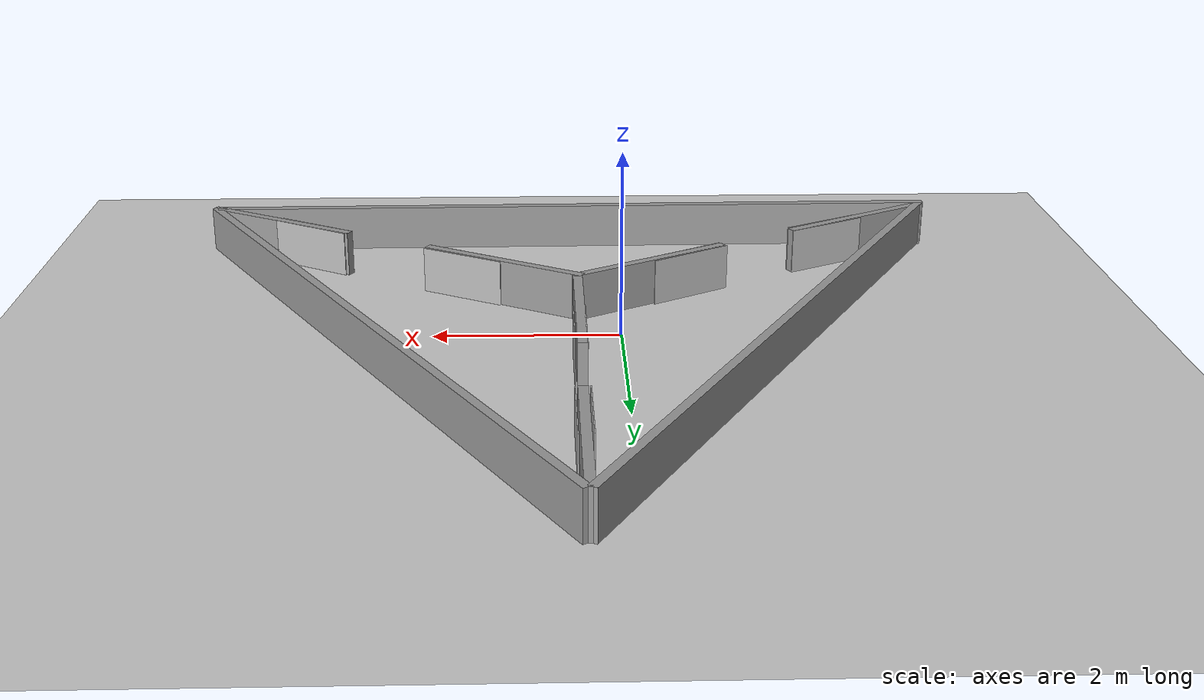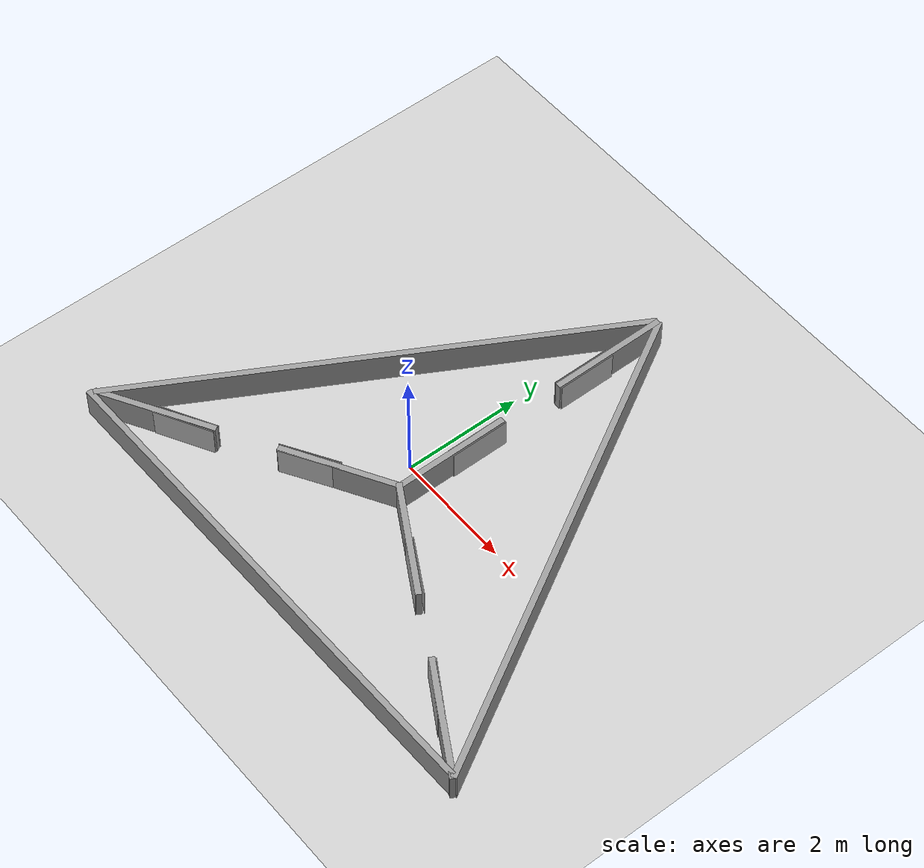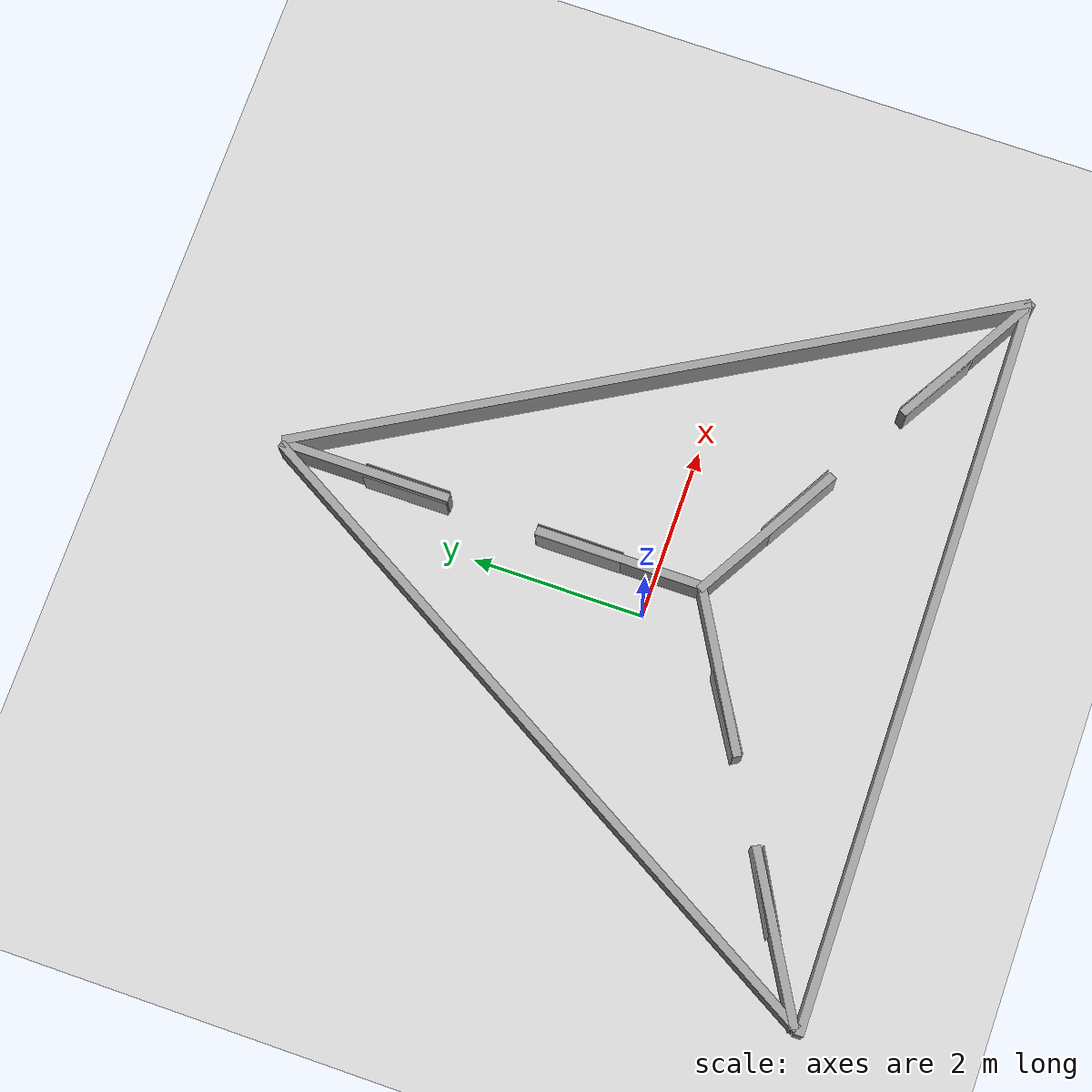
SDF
<sdf version="1.6">
 <world name="default">
  <light name="sun" type="directional">
   <pose>0 0 10 0 -0 0</pose>
   <diffuse>0.8 0.8 0.8 1</diffuse>
   <specular>0.2 0.2 0.2 1</specular>
   <attenuation>
    <range>1000</range>
    <constant>0.9</constant>
    <linear>0.01</linear>
    <quadratic>0.001</quadratic>
   </attenuation>
   <direction>-0.5 0.1 -0.9</direction>
   <spot><inner_angle>0</inner_angle><outer_angle>0</outer_angle><falloff>0</falloff></spot>
  </light>
  <model name="ground_plane">
   <static>1</static>
   <link name="link">
    <collision name="collision">
     <geometry><plane><normal>0 0 1</normal><size>100 100</size></plane></geometry>
     <surface>
      <contact><collide_bitmask>65535</collide_bitmask></contact>
      <friction><ode><mu>100</mu><mu2>50</mu2></ode></friction>
     </surface>
    </collision>
    <visual name="visual">
     <cast_shadows>0</cast_shadows>
     <geometry><plane><normal>0 0 1</normal><size>100 100</size></plane></geometry>
     <material>
      <script><uri>file://media/materials/scripts/gazebo.material</uri><name>Gazebo/Grey</name></script>
     </material>
    </visual>
   </link>
  </model>
  <gravity>0 0 -9.8</gravity>
  <magnetic_field>6e-06 2.3e-05 -4.2e-05</magnetic_field>
  <atmosphere type="adiabatic"/>
  <physics name="default_physics" default="0" type="ode">
   <max_step_size>0.001</max_step_size>
   <real_time_factor>1</real_time_factor>
   <real_time_update_rate>1000</real_time_update_rate>
  </physics>
  <scene><ambient>0.4 0.4 0.4 1</ambient><background>0.7 0.7 0.7 1</background><shadows>1</shadows></scene>
  <audio><device>default</device></audio>
  <spherical_coordinates>
   <surface_model>EARTH_WGS84</surface_model>
   <latitude_deg>0</latitude_deg>
   <longitude_deg>0</longitude_deg>
   <elevation>0</elevation>
   <heading_deg>0</heading_deg>
  </spherical_coordinates>
  <model name="3_room_tagged">
   <link name="link_1">
    <inertial>
     <mass>1</mass>
     <inertia>
      <ixx>0.166667</ixx>
      <ixy>0</ixy>
      <ixz>0</ixz>
      <iyy>0.166667</iyy>
      <iyz>0</iyz>
      <izz>0.166667</izz>
     </inertia>
    </inertial>
    <pose>-0.000424 0.947771 0 0 -0 0</pose>
    <visual name="visual">
     <geometry><box><size>0.1 2 1</size></box></geometry>
     <material>
      <lighting>1</lighting>
      <script><uri>file://media/materials/scripts/gazebo.material</uri><name>Gazebo/Grey</name></script>
      <shader type="pixel"><normal_map>__default__</normal_map></shader>
      <ambient>0.3 0.3 0.3 1</ambient>
      <diffuse>0.7 0.7 0.7 1</diffuse>
      <specular>0.01 0.01 0.01 1</specular>
      <emissive>0 0 0 1</emissive>
     </material>
    </visual>
    <collision name="collision">
     <geometry><box><size>0.1 2 1</size></box></geometry>
     <surface>
      <friction>
       <ode><mu>1</mu><mu2>1</mu2><fdir1>0 0 0</fdir1><slip1>0</slip1><slip2>0</slip2></ode>
       <torsional>
        <coefficient>1</coefficient>
        <patch_radius>0</patch_radius>
        <surface_radius>0</surface_radius>
        <use_patch_radius>1</use_patch_radius>
        <ode><slip>0</slip></ode>
       </torsional>
      </friction>
      <bounce><restitution_coefficient>0</restitution_coefficient><threshold>1e+06</threshold></bounce>
      <contact>
       <collide_without_contact>0</collide_without_contact>
       <collide_without_contact_bitmask>1</collide_without_contact_bitmask>
       <collide_bitmask>1</collide_bitmask>
       <ode>
        <soft_cfm>0</soft_cfm>
        <soft_erp>0.2</soft_erp>
        <kp>1e+13</kp>
        <kd>1</kd>
        <max_vel>0.01</max_vel>
        <min_depth>0</min_depth>
       </ode>
       <bullet>
        <split_impulse>1</split_impulse>
        <split_impulse_penetration_threshold>-0.01</split_impulse_penetration_threshold>
        <soft_cfm>0</soft_cfm>
        <soft_erp>0.2</soft_erp>
        <kp>1e+13</kp>
        <kd>1</kd>
       </bullet>
      </contact>
     </surface>
    </collision>
   </link>
   <link name="link_1_clone">
    <inertial>
     <mass>1</mass>
     <inertia>
      <ixx>0.166667</ixx>
      <ixy>0</ixy>
      <ixz>0</ixz>
      <iyy>0.166667</iyy>
      <iyz>0</iyz>
      <izz>0.166667</izz>
     </inertia>
    </inertial>
    <pose>0.810044 -0.484232 0.000592 0 -0 1.0472</pose>
    <visual name="visual">
     <geometry><box><size>0.1 2 1</size></box></geometry>
     <material>
      <lighting>1</lighting>
      <script><uri>file://media/materials/scripts/gazebo.material</uri><name>Gazebo/Grey</name></script>
      <shader type="pixel"><normal_map>__default__</normal_map></shader>
      <ambient>0.3 0.3 0.3 1</ambient>
      <diffuse>0.7 0.7 0.7 1</diffuse>
      <specular>0.01 0.01 0.01 1</specular>
      <emissive>0 0 0 1</emissive>
     </material>
    </visual>
    <collision name="collision">
     <geometry><box><size>0.1 2 1</size></box></geometry>
     <surface>
      <friction>
       <ode><mu>1</mu><mu2>1</mu2><fdir1>0 0 0</fdir1><slip1>0</slip1><slip2>0</slip2></ode>
       <torsional>
        <coefficient>1</coefficient>
        <patch_radius>0</patch_radius>
        <surface_radius>0</surface_radius>
        <use_patch_radius>1</use_patch_radius>
        <ode><slip>0</slip></ode>
       </torsional>
      </friction>
      <bounce><restitution_coefficient>0</restitution_coefficient><threshold>1e+06</threshold></bounce>
      <contact>
       <collide_without_contact>0</collide_without_contact>
       <collide_without_contact_bitmask>1</collide_without_contact_bitmask>
       <collide_bitmask>1</collide_bitmask>
       <ode>
        <soft_cfm>0</soft_cfm>
        <soft_erp>0.2</soft_erp>
        <kp>1e+13</kp>
        <kd>1</kd>
        <max_vel>0.01</max_vel>
        <min_depth>0</min_depth>
       </ode>
       <bullet>
        <split_impulse>1</split_impulse>
        <split_impulse_penetration_threshold>-0.01</split_impulse_penetration_threshold>
        <soft_cfm>0</soft_cfm>
        <soft_erp>0.2</soft_erp>
        <kp>1e+13</kp>
        <kd>1</kd>
       </bullet>
      </contact>
     </surface>
    </collision>
   </link>
   <link name="link_1_clone_0">
    <inertial>
     <mass>1</mass>
     <inertia>
      <ixx>0.166667</ixx>
      <ixy>0</ixy>
      <ixz>0</ixz>
      <iyy>0.166667</iyy>
      <iyz>0</iyz>
      <izz>0.166667</izz>
     </inertia>
    </inertial>
    <pose>-0.820906 -0.471986 0 0 0 -1.0472</pose>
    <visual name="visual">
     <geometry><box><size>0.1 2 1</size></box></geometry>
     <material>
      <lighting>1</lighting>
      <script><uri>file://media/materials/scripts/gazebo.material</uri><name>Gazebo/Grey</name></script>
      <shader type="pixel"><normal_map>__default__</normal_map></shader>
      <ambient>0.3 0.3 0.3 1</ambient>
      <diffuse>0.7 0.7 0.7 1</diffuse>
      <specular>0.01 0.01 0.01 1</specular>
      <emissive>0 0 0 1</emissive>
     </material>
    </visual>
    <collision name="collision">
     <geometry><box><size>0.1 2 1</size></box></geometry>
     <surface>
      <friction>
       <ode><mu>1</mu><mu2>1</mu2><fdir1>0 0 0</fdir1><slip1>0</slip1><slip2>0</slip2></ode>
       <torsional>
        <coefficient>1</coefficient>
        <patch_radius>0</patch_radius>
        <surface_radius>0</surface_radius>
        <use_patch_radius>1</use_patch_radius>
        <ode><slip>0</slip></ode>
       </torsional>
      </friction>
      <bounce><restitution_coefficient>0</restitution_coefficient><threshold>1e+06</threshold></bounce>
      <contact>
       <collide_without_contact>0</collide_without_contact>
       <collide_without_contact_bitmask>1</collide_without_contact_bitmask>
       <collide_bitmask>1</collide_bitmask>
       <ode>
        <soft_cfm>0</soft_cfm>
        <soft_erp>0.2</soft_erp>
        <kp>1e+13</kp>
        <kd>1</kd>
        <max_vel>0.01</max_vel>
        <min_depth>0</min_depth>
       </ode>
       <bullet>
        <split_impulse>1</split_impulse>
        <split_impulse_penetration_threshold>-0.01</split_impulse_penetration_threshold>
        <soft_cfm>0</soft_cfm>
        <soft_erp>0.2</soft_erp>
        <kp>1e+13</kp>
        <kd>1</kd>
       </bullet>
      </contact>
     </surface>
    </collision>
   </link>
   <link name="link_1_clone_1">
    <inertial>
     <mass>1</mass>
     <inertia>
      <ixx>0.166667</ixx>
      <ixy>0</ixy>
      <ixz>0</ixz>
      <iyy>0.166667</iyy>
      <iyz>0</iyz>
      <izz>0.166667</izz>
     </inertia>
    </inertial>
    <pose>0.026698 3.98647 0 0 -0 0</pose>
    <visual name="visual">
     <geometry><box><size>0.1 2 1</size></box></geometry>
     <material>
      <lighting>1</lighting>
      <script><uri>file://media/materials/scripts/gazebo.material</uri><name>Gazebo/Grey</name></script>
      <shader type="pixel"><normal_map>__default__</normal_map></shader>
      <ambient>0.3 0.3 0.3 1</ambient>
      <diffuse>0.7 0.7 0.7 1</diffuse>
      <specular>0.01 0.01 0.01 1</specular>
      <emissive>0 0 0 1</emissive>
     </material>
    </visual>
    <collision name="collision">
     <geometry><box><size>0.1 2 1</size></box></geometry>
     <surface>
      <friction>
       <ode><mu>1</mu><mu2>1</mu2><fdir1>0 0 0</fdir1><slip1>0</slip1><slip2>0</slip2></ode>
       <torsional>
        <coefficient>1</coefficient>
        <patch_radius>0</patch_radius>
        <surface_radius>0</surface_radius>
        <use_patch_radius>1</use_patch_radius>
        <ode><slip>0</slip></ode>
       </torsional>
      </friction>
      <bounce><restitution_coefficient>0</restitution_coefficient><threshold>1e+06</threshold></bounce>
      <contact>
       <collide_without_contact>0</collide_without_contact>
       <collide_without_contact_bitmask>1</collide_without_contact_bitmask>
       <collide_bitmask>1</collide_bitmask>
       <ode>
        <soft_cfm>0</soft_cfm>
        <soft_erp>0.2</soft_erp>
        <kp>1e+13</kp>
        <kd>1</kd>
        <max_vel>0.01</max_vel>
        <min_depth>0</min_depth>
       </ode>
       <bullet>
        <split_impulse>1</split_impulse>
        <split_impulse_penetration_threshold>-0.01</split_impulse_penetration_threshold>
        <soft_cfm>0</soft_cfm>
        <soft_erp>0.2</soft_erp>
        <kp>1e+13</kp>
        <kd>1</kd>
       </bullet>
      </contact>
     </surface>
    </collision>
   </link>
   <link name="link_1_clone_2">
    <inertial>
     <mass>4.30688</mass>
     <inertia><ixx>26.9889</ixx><ixy>0</ixy><ixz>0</ixz><iyy>0.362496</iyy><iyz>0</iyz><izz>26.6336</izz></inertia>
    </inertial>
    <pose>-2.12522 1.24153 0 0 0 -0.518643</pose>
    <visual name="visual">
     <geometry><box><size>0.1 8.61379 1</size></box></geometry>
     <material>
      <lighting>1</lighting>
      <script><uri>file://media/materials/scripts/gazebo.material</uri><name>Gazebo/Grey</name></script>
      <shader type="pixel"><normal_map>__default__</normal_map></shader>
      <ambient>0.3 0.3 0.3 1</ambient>
      <diffuse>0.7 0.7 0.7 1</diffuse>
      <specular>0.01 0.01 0.01 1</specular>
      <emissive>0 0 0 1</emissive>
     </material>
    </visual>
    <collision name="collision">
     <geometry><box><size>0.1 8.61379 1</size></box></geometry>
     <surface>
      <friction>
       <ode><mu>1</mu><mu2>1</mu2><fdir1>0 0 0</fdir1><slip1>0</slip1><slip2>0</slip2></ode>
       <torsional>
        <coefficient>1</coefficient>
        <patch_radius>0</patch_radius>
        <surface_radius>0</surface_radius>
        <use_patch_radius>1</use_patch_radius>
        <ode><slip>0</slip></ode>
       </torsional>
      </friction>
      <bounce><restitution_coefficient>0</restitution_coefficient><threshold>1e+06</threshold></bounce>
      <contact>
       <collide_without_contact>0</collide_without_contact>
       <collide_without_contact_bitmask>1</collide_without_contact_bitmask>
       <collide_bitmask>1</collide_bitmask>
       <ode>
        <soft_cfm>0</soft_cfm>
        <soft_erp>0.2</soft_erp>
        <kp>1e+13</kp>
        <kd>1</kd>
        <max_vel>0.01</max_vel>
        <min_depth>0</min_depth>
       </ode>
       <bullet>
        <split_impulse>1</split_impulse>
        <split_impulse_penetration_threshold>-0.01</split_impulse_penetration_threshold>
        <soft_cfm>0</soft_cfm>
        <soft_erp>0.2</soft_erp>
        <kp>1e+13</kp>
        <kd>1</kd>
       </bullet>
      </contact>
     </surface>
    </collision>
   </link>
   <link name="link_1_clone_2_clone">
    <inertial>
     <mass>4.30688</mass>
     <inertia><ixx>26.9889</ixx><ixy>0</ixy><ixz>0</ixz><iyy>0.362496</iyy><iyz>0</iyz><izz>26.6336</izz></inertia>
    </inertial>
    <pose>2.18969 1.25037 0 0 0 -2.6209</pose>
    <visual name="visual">
     <geometry><box><size>0.1 8.61379 1</size></box></geometry>
     <material>
      <lighting>1</lighting>
      <script><uri>file://media/materials/scripts/gazebo.material</uri><name>Gazebo/Grey</name></script>
      <shader type="pixel"><normal_map>__default__</normal_map></shader>
      <ambient>0.3 0.3 0.3 1</ambient>
      <diffuse>0.7 0.7 0.7 1</diffuse>
      <specular>0.01 0.01 0.01 1</specular>
      <emissive>0 0 0 1</emissive>
     </material>
    </visual>
    <collision name="collision">
     <geometry><box><size>0.1 8.61379 1</size></box></geometry>
     <surface>
      <friction>
       <ode><mu>1</mu><mu2>1</mu2><fdir1>0 0 0</fdir1><slip1>0</slip1><slip2>0</slip2></ode>
       <torsional>
        <coefficient>1</coefficient>
        <patch_radius>0</patch_radius>
        <surface_radius>0</surface_radius>
        <use_patch_radius>1</use_patch_radius>
        <ode><slip>0</slip></ode>
       </torsional>
      </friction>
      <bounce><restitution_coefficient>0</restitution_coefficient><threshold>1e+06</threshold></bounce>
      <contact>
       <collide_without_contact>0</collide_without_contact>
       <collide_without_contact_bitmask>1</collide_without_contact_bitmask>
       <collide_bitmask>1</collide_bitmask>
       <ode>
        <soft_cfm>0</soft_cfm>
        <soft_erp>0.2</soft_erp>
        <kp>1e+13</kp>
        <kd>1</kd>
        <max_vel>0.01</max_vel>
        <min_depth>0</min_depth>
       </ode>
       <bullet>
        <split_impulse>1</split_impulse>
        <split_impulse_penetration_threshold>-0.01</split_impulse_penetration_threshold>
        <soft_cfm>0</soft_cfm>
        <soft_erp>0.2</soft_erp>
        <kp>1e+13</kp>
        <kd>1</kd>
       </bullet>
      </contact>
     </surface>
    </collision>
   </link>
   <link name="link_1_clone_2_clone_0">
    <inertial>
     <mass>4.30688</mass>
     <inertia><ixx>26.9889</ixx><ixy>0</ixy><ixz>0</ixz><iyy>0.362496</iyy><iyz>0</iyz><izz>26.6336</izz></inertia>
    </inertial>
    <pose>-0.010795 -2.50007 0 0 -0 1.57952</pose>
    <visual name="visual">
     <geometry><box><size>0.1 8.61379 1</size></box></geometry>
     <material>
      <lighting>1</lighting>
      <script><uri>file://media/materials/scripts/gazebo.material</uri><name>Gazebo/Grey</name></script>
      <shader type="pixel"><normal_map>__default__</normal_map></shader>
      <ambient>0.3 0.3 0.3 1</ambient>
      <diffuse>0.7 0.7 0.7 1</diffuse>
      <specular>0.01 0.01 0.01 1</specular>
      <emissive>0 0 0 1</emissive>
     </material>
    </visual>
    <collision name="collision">
     <geometry><box><size>0.1 8.61379 1</size></box></geometry>
     <surface>
      <friction>
       <ode><mu>1</mu><mu2>1</mu2><fdir1>0 0 0</fdir1><slip1>0</slip1><slip2>0</slip2></ode>
       <torsional>
        <coefficient>1</coefficient>
        <patch_radius>0</patch_radius>
        <surface_radius>0</surface_radius>
        <use_patch_radius>1</use_patch_radius>
        <ode><slip>0</slip></ode>
       </torsional>
      </friction>
      <bounce><restitution_coefficient>0</restitution_coefficient><threshold>1e+06</threshold></bounce>
      <contact>
       <collide_without_contact>0</collide_without_contact>
       <collide_without_contact_bitmask>1</collide_without_contact_bitmask>
       <collide_bitmask>1</collide_bitmask>
       <ode>
        <soft_cfm>0</soft_cfm>
        <soft_erp>0.2</soft_erp>
        <kp>1e+13</kp>
        <kd>1</kd>
        <max_vel>0.01</max_vel>
        <min_depth>0</min_depth>
       </ode>
       <bullet>
        <split_impulse>1</split_impulse>
        <split_impulse_penetration_threshold>-0.01</split_impulse_penetration_threshold>
        <soft_cfm>0</soft_cfm>
        <soft_erp>0.2</soft_erp>
        <kp>1e+13</kp>
        <kd>1</kd>
       </bullet>
      </contact>
     </surface>
    </collision>
   </link>
   <link name="link_1_clone_clone">
    <inertial>
     <mass>1</mass>
     <inertia>
      <ixx>0.166667</ixx>
      <ixy>0</ixy>
      <ixz>0</ixz>
      <iyy>0.166667</iyy>
      <iyz>0</iyz>
      <izz>0.166667</izz>
     </inertia>
    </inertial>
    <pose>3.47972 -1.99977 0 0 -0 1.0472</pose>
    <visual name="visual">
     <geometry><box><size>0.1 2 1</size></box></geometry>
     <material>
      <lighting>1</lighting>
      <script><uri>file://media/materials/scripts/gazebo.material</uri><name>Gazebo/Grey</name></script>
      <shader type="pixel"><normal_map>__default__</normal_map></shader>
      <ambient>0.3 0.3 0.3 1</ambient>
      <diffuse>0.7 0.7 0.7 1</diffuse>
      <specular>0.01 0.01 0.01 1</specular>
      <emissive>0 0 0 1</emissive>
     </material>
    </visual>
    <collision name="collision">
     <geometry><box><size>0.1 2 1</size></box></geometry>
     <surface>
      <friction>
       <ode><mu>1</mu><mu2>1</mu2><fdir1>0 0 0</fdir1><slip1>0</slip1><slip2>0</slip2></ode>
       <torsional>
        <coefficient>1</coefficient>
        <patch_radius>0</patch_radius>
        <surface_radius>0</surface_radius>
        <use_patch_radius>1</use_patch_radius>
        <ode><slip>0</slip></ode>
       </torsional>
      </friction>
      <bounce><restitution_coefficient>0</restitution_coefficient><threshold>1e+06</threshold></bounce>
      <contact>
       <collide_without_contact>0</collide_without_contact>
       <collide_without_contact_bitmask>1</collide_without_contact_bitmask>
       <collide_bitmask>1</collide_bitmask>
       <ode>
        <soft_cfm>0</soft_cfm>
        <soft_erp>0.2</soft_erp>
        <kp>1e+13</kp>
        <kd>1</kd>
        <max_vel>0.01</max_vel>
        <min_depth>0</min_depth>
       </ode>
       <bullet>
        <split_impulse>1</split_impulse>
        <split_impulse_penetration_threshold>-0.01</split_impulse_penetration_threshold>
        <soft_cfm>0</soft_cfm>
        <soft_erp>0.2</soft_erp>
        <kp>1e+13</kp>
        <kd>1</kd>
       </bullet>
      </contact>
     </surface>
    </collision>
   </link>
   <link name="link_1_clone_clone_0">
    <inertial>
     <mass>1</mass>
     <inertia>
      <ixx>0.166667</ixx>
      <ixy>0</ixy>
      <ixz>0</ixz>
      <iyy>0.166667</iyy>
      <iyz>0</iyz>
      <izz>0.166667</izz>
     </inertia>
    </inertial>
    <pose>-3.40539 -1.97123 0 0 0 -1.0472</pose>
    <visual name="visual">
     <geometry><box><size>0.1 2 1</size></box></geometry>
     <material>
      <lighting>1</lighting>
      <script><uri>file://media/materials/scripts/gazebo.material</uri><name>Gazebo/Grey</name></script>
      <shader type="pixel"><normal_map>__default__</normal_map></shader>
      <ambient>0.3 0.3 0.3 1</ambient>
      <diffuse>0.7 0.7 0.7 1</diffuse>
      <specular>0.01 0.01 0.01 1</specular>
      <emissive>0 0 0 1</emissive>
     </material>
    </visual>
    <collision name="collision">
     <geometry><box><size>0.1 2 1</size></box></geometry>
     <surface>
      <friction>
       <ode><mu>1</mu><mu2>1</mu2><fdir1>0 0 0</fdir1><slip1>0</slip1><slip2>0</slip2></ode>
       <torsional>
        <coefficient>1</coefficient>
        <patch_radius>0</patch_radius>
        <surface_radius>0</surface_radius>
        <use_patch_radius>1</use_patch_radius>
        <ode><slip>0</slip></ode>
       </torsional>
      </friction>
      <bounce><restitution_coefficient>0</restitution_coefficient><threshold>1e+06</threshold></bounce>
      <contact>
       <collide_without_contact>0</collide_without_contact>
       <collide_without_contact_bitmask>1</collide_without_contact_bitmask>
       <collide_bitmask>1</collide_bitmask>
       <ode>
        <soft_cfm>0</soft_cfm>
        <soft_erp>0.2</soft_erp>
        <kp>1e+13</kp>
        <kd>1</kd>
        <max_vel>0.01</max_vel>
        <min_depth>0</min_depth>
       </ode>
       <bullet>
        <split_impulse>1</split_impulse>
        <split_impulse_penetration_threshold>-0.01</split_impulse_penetration_threshold>
        <soft_cfm>0</soft_cfm>
        <soft_erp>0.2</soft_erp>
        <kp>1e+13</kp>
        <kd>1</kd>
       </bullet>
      </contact>
     </surface>
    </collision>
   </link>
   <model name="Apriltag36_11_00000">
    <link name="main">
     <visual name="main_Visual">
      <geometry><box><size>1 1 0.01</size></box></geometry>
      <material>
       <script>
        <uri>model://Apriltag36_11_00000/materials/scripts</uri>
        <uri>model://Apriltag36_11_00000/materials/textures</uri>
        <name>Apriltag36_11_00000</name>
       </script>
      </material>
     </visual>
    </link>
    <static>1</static>
    <pose>3.10184 -1.71745 0 -1.5708 -0 -0.544394</pose>
   </model>
   <model name="Apriltag36_11_00001">
    <link name="main">
     <visual name="main_Visual">
      <geometry><box><size>1 1 0.01</size></box></geometry>
      <material>
       <script>
        <uri>model://Apriltag36_11_00001/materials/scripts</uri>
        <uri>model://Apriltag36_11_00001/materials/textures</uri>
        <name>Apriltag36_11_00001</name>
       </script>
      </material>
     </visual>
    </link>
    <static>1</static>
    <pose>1.27872 -0.667041 0 2.08935 1.57079 -3.1359</pose>
   </model>
   <model name="Apriltag36_11_00002">
    <link name="main">
     <visual name="main_Visual">
      <geometry><box><size>1 1 0.01</size></box></geometry>
      <material>
       <script>
        <uri>model://Apriltag36_11_00002/materials/scripts</uri>
        <uri>model://Apriltag36_11_00002/materials/textures</uri>
        <name>Apriltag36_11_00002</name>
       </script>
      </material>
     </visual>
    </link>
    <static>1</static>
    <pose>0.069291 1.44484 -0.006277 3.14105 1.57079 3.14105</pose>
   </model>
   <model name="Apriltag36_11_00003">
    <link name="main">
     <visual name="main_Visual">
      <geometry><box><size>1 1 0.01</size></box></geometry>
      <material>
       <script>
        <uri>model://Apriltag36_11_00003/materials/scripts</uri>
        <uri>model://Apriltag36_11_00003/materials/textures</uri>
        <name>Apriltag36_11_00003</name>
       </script>
      </material>
     </visual>
    </link>
    <static>1</static>
    <pose>0.099224 3.50225 0 -0.000233 1.57079 -0.000233</pose>
   </model>
   <model name="Apriltag36_11_00004">
    <link name="main">
     <visual name="main_Visual">
      <geometry><box><size>1 1 0.01</size></box></geometry>
      <material>
       <script>
        <uri>model://Apriltag36_11_00004/materials/scripts</uri>
        <uri>model://Apriltag36_11_00004/materials/textures</uri>
        <name>Apriltag36_11_00004</name>
       </script>
      </material>
     </visual>
    </link>
    <static>1</static>
    <pose>-0.046639 3.49134 0 -3.14127 -1.57079 3.14126</pose>
   </model>
   <model name="Apriltag36_11_00005">
    <link name="main">
     <visual name="main_Visual">
      <geometry><box><size>1 1 0.01</size></box></geometry>
      <material>
       <script>
        <uri>model://Apriltag36_11_00005/materials/scripts</uri>
        <uri>model://Apriltag36_11_00005/materials/textures</uri>
        <name>Apriltag36_11_00005</name>
       </script>
      </material>
     </visual>
    </link>
    <static>1</static>
    <pose>-0.051672 1.43988 0 -3.14127 -1.57079 3.14126</pose>
   </model>
   <model name="Apriltag36_11_00006">
    <link name="main">
     <visual name="main_Visual">
      <geometry><box><size>1 1 0.01</size></box></geometry>
      <material>
       <script>
        <uri>model://Apriltag36_11_00006/materials/scripts</uri>
        <uri>model://Apriltag36_11_00006/materials/textures</uri>
        <name>Apriltag36_11_00006</name>
       </script>
      </material>
     </visual>
    </link>
    <static>1</static>
    <pose>-1.2991 -0.665588 0 -1.5708 -0 0.541517</pose>
   </model>
   <model name="Apriltag36_11_00007">
    <link name="main">
     <visual name="main_Visual">
      <geometry><box><size>1 1 0.01</size></box></geometry>
      <material>
       <script>
        <uri>model://Apriltag36_11_00007/materials/scripts</uri>
        <uri>model://Apriltag36_11_00007/materials/textures</uri>
        <name>Apriltag36_11_00007</name>
       </script>
      </material>
     </visual>
    </link>
    <static>1</static>
    <pose>-2.9958 -1.66095 0 -1.5708 -0 0.498541</pose>
   </model>
   <model name="Apriltag36_11_00008">
    <link name="main">
     <visual name="main_Visual">
      <geometry><box><size>1 1 0.01</size></box></geometry>
      <material>
       <script>
        <uri>model://Apriltag36_11_00008/materials/scripts</uri>
        <uri>model://Apriltag36_11_00008/materials/textures</uri>
        <name>Apriltag36_11_00008</name>
       </script>
      </material>
     </visual>
    </link>
    <static>1</static>
    <pose>-2.95208 -1.78609 0 1.00493 1.57079 -0.065734</pose>
   </model>
   <model name="Apriltag36_11_00009">
    <link name="main">
     <visual name="main_Visual">
      <geometry><box><size>1 1 0.01</size></box></geometry>
      <material>
       <script>
        <uri>model://Apriltag36_11_00009/materials/scripts</uri>
        <uri>model://Apriltag36_11_00009/materials/textures</uri>
        <name>Apriltag36_11_00009</name>
       </script>
      </material>
     </visual>
    </link>
    <static>1</static>
    <pose>-1.21581 -0.759279 0 1.5708 -0 0.54068</pose>
   </model>
   <model name="Apriltag36_11_00010">
    <link name="main">
     <visual name="main_Visual">
      <geometry><box><size>1 1 0.01</size></box></geometry>
      <material>
       <script>
        <uri>model://Apriltag36_11_00010/materials/scripts</uri>
        <uri>model://Apriltag36_11_00010/materials/textures</uri>
        <name>Apriltag36_11_00010</name>
       </script>
      </material>
     </visual>
    </link>
    <static>1</static>
    <pose>1.22049 -0.776628 0 1.5708 -0 -0.524739</pose>
   </model>
   <model name="Apriltag36_11_00011">
    <link name="main">
     <visual name="main_Visual">
      <geometry><box><size>1 1 0.01</size></box></geometry>
      <material>
       <script>
        <uri>model://Apriltag36_11_00011/materials/scripts</uri>
        <uri>model://Apriltag36_11_00011/materials/textures</uri>
        <name>Apriltag36_11_00011</name>
       </script>
      </material>
     </visual>
    </link>
    <static>1</static>
    <pose>3.02998 -1.80257 0 1.5708 -0 -0.537969</pose>
   </model>
   <joint name="link_1_JOINT_12" type="fixed">
    <parent>link_1</parent>
    <child>Apriltag36_11_00002::main</child>
    <physics>
     <ode><limit><cfm>0</cfm><erp>0.2</erp></limit><suspension><cfm>0</cfm><erp>0.2</erp></suspension></ode>
    </physics>
   </joint>
   <joint name="link_1_JOINT_15" type="fixed">
    <parent>link_1</parent>
    <child>Apriltag36_11_00005::main</child>
    <physics>
     <ode><limit><cfm>0</cfm><erp>0.2</erp></limit><suspension><cfm>0</cfm><erp>0.2</erp></suspension></ode>
    </physics>
   </joint>
   <joint name="link_1_JOINT_4" type="fixed">
    <parent>link_1</parent>
    <child>link_1_clone_2</child>
    <physics>
     <ode><limit><cfm>0</cfm><erp>0.2</erp></limit><suspension><cfm>0</cfm><erp>0.2</erp></suspension></ode>
    </physics>
   </joint>
   <joint name="link_1_JOINT_5" type="fixed">
    <parent>link_1</parent>
    <child>link_1_clone_2_clone</child>
    <physics>
     <ode><limit><cfm>0</cfm><erp>0.2</erp></limit><suspension><cfm>0</cfm><erp>0.2</erp></suspension></ode>
    </physics>
   </joint>
   <joint name="link_1_clone_0_JOINT_16" type="fixed">
    <parent>link_1_clone_0</parent>
    <child>Apriltag36_11_00006::main</child>
    <physics>
     <ode><limit><cfm>0</cfm><erp>0.2</erp></limit><suspension><cfm>0</cfm><erp>0.2</erp></suspension></ode>
    </physics>
   </joint>
   <joint name="link_1_clone_0_JOINT_3" type="fixed">
    <parent>link_1_clone_0</parent>
    <child>link_1_clone_2</child>
    <physics>
     <ode><limit><cfm>0</cfm><erp>0.2</erp></limit><suspension><cfm>0</cfm><erp>0.2</erp></suspension></ode>
    </physics>
   </joint>
   <joint name="link_1_clone_0_JOINT_8" type="fixed">
    <parent>link_1_clone_0</parent>
    <child>link_1_clone_2_clone_0</child>
    <physics>
     <ode><limit><cfm>0</cfm><erp>0.2</erp></limit><suspension><cfm>0</cfm><erp>0.2</erp></suspension></ode>
    </physics>
   </joint>
   <joint name="link_1_clone_1_JOINT_14" type="fixed">
    <parent>link_1_clone_1</parent>
    <child>Apriltag36_11_00004::main</child>
    <physics>
     <ode><limit><cfm>0</cfm><erp>0.2</erp></limit><suspension><cfm>0</cfm><erp>0.2</erp></suspension></ode>
    </physics>
   </joint>
   <joint name="link_1_clone_2_JOINT_0" type="fixed">
    <parent>link_1_clone_2</parent>
    <child>link_1_clone_2_clone_0</child>
    <physics>
     <ode><limit><cfm>0</cfm><erp>0.2</erp></limit><suspension><cfm>0</cfm><erp>0.2</erp></suspension></ode>
    </physics>
   </joint>
   <joint name="link_1_clone_2_JOINT_13" type="fixed">
    <parent>link_1_clone_2</parent>
    <child>link_1_clone_1</child>
    <physics>
     <ode><limit><cfm>0</cfm><erp>0.2</erp></limit><suspension><cfm>0</cfm><erp>0.2</erp></suspension></ode>
    </physics>
   </joint>
   <joint name="link_1_clone_2_JOINT_9" type="fixed">
    <parent>link_1_clone_2</parent>
    <child>link_1_clone_clone_0</child>
    <physics>
     <ode><limit><cfm>0</cfm><erp>0.2</erp></limit><suspension><cfm>0</cfm><erp>0.2</erp></suspension></ode>
    </physics>
   </joint>
   <joint name="link_1_clone_2_clone_0_JOINT_10" type="fixed">
    <parent>link_1_clone_2_clone_0</parent>
    <child>link_1_clone_clone_0</child>
    <physics>
     <ode><limit><cfm>0</cfm><erp>0.2</erp></limit><suspension><cfm>0</cfm><erp>0.2</erp></suspension></ode>
    </physics>
   </joint>
   <joint name="link_1_clone_2_clone_0_JOINT_11" type="fixed">
    <parent>link_1_clone_2_clone_0</parent>
    <child>link_1_clone_clone</child>
    <physics>
     <ode><limit><cfm>0</cfm><erp>0.2</erp></limit><suspension><cfm>0</cfm><erp>0.2</erp></suspension></ode>
    </physics>
   </joint>
   <joint name="link_1_clone_2_clone_0_JOINT_1" type="fixed">
    <parent>link_1_clone_2_clone_0</parent>
    <child>link_1_clone_2_clone</child>
    <physics>
     <ode><limit><cfm>0</cfm><erp>0.2</erp></limit><suspension><cfm>0</cfm><erp>0.2</erp></suspension></ode>
    </physics>
   </joint>
   <joint name="link_1_clone_2_clone_JOINT_12" type="revolute">
    <parent>link_1_clone_2_clone</parent>
    <child>link_1_clone_clone</child>
    <axis>
     <xyz>1 0 0</xyz>
     <limit>
      <lower>-1.79769e+308</lower>
      <upper>1.79769e+308</upper>
      <effort>-1</effort>
      <velocity>-1</velocity>
     </limit>
     <dynamics>
      <spring_reference>0</spring_reference>
      <spring_stiffness>0</spring_stiffness>
      <damping>0</damping>
      <friction>0</friction>
     </dynamics>
     <use_parent_model_frame>0</use_parent_model_frame>
    </axis>
    <physics>
     <ode><limit><cfm>0</cfm><erp>0.2</erp></limit><suspension><cfm>0</cfm><erp>0.2</erp></suspension></ode>
    </physics>
   </joint>
   <joint name="link_1_clone_2_clone_JOINT_14" type="fixed">
    <parent>link_1_clone_2_clone</parent>
    <child>link_1_clone_1</child>
    <physics>
     <ode><limit><cfm>0</cfm><erp>0.2</erp></limit><suspension><cfm>0</cfm><erp>0.2</erp></suspension></ode>
    </physics>
   </joint>
   <joint name="link_1_clone_2_clone_JOINT_2" type="fixed">
    <parent>link_1_clone_2_clone</parent>
    <child>link_1_clone_2</child>
    <physics>
     <ode><limit><cfm>0</cfm><erp>0.2</erp></limit><suspension><cfm>0</cfm><erp>0.2</erp></suspension></ode>
    </physics>
   </joint>
   <joint name="link_1_clone_JOINT_6" type="fixed">
    <parent>link_1_clone</parent>
    <child>link_1_clone_2_clone</child>
    <physics>
     <ode><limit><cfm>0</cfm><erp>0.2</erp></limit><suspension><cfm>0</cfm><erp>0.2</erp></suspension></ode>
    </physics>
   </joint>
   <joint name="link_1_clone_JOINT_7" type="fixed">
    <parent>link_1_clone</parent>
    <child>link_1_clone_2_clone_0</child>
    <physics>
     <ode><limit><cfm>0</cfm><erp>0.2</erp></limit><suspension><cfm>0</cfm><erp>0.2</erp></suspension></ode>
    </physics>
   </joint>
   <joint name="main_JOINT_10" type="fixed">
    <parent>Apriltag36_11_00001::main</parent>
    <child>link_1_clone</child>
    <physics>
     <ode><limit><cfm>0</cfm><erp>0.2</erp></limit><suspension><cfm>0</cfm><erp>0.2</erp></suspension></ode>
    </physics>
   </joint>
   <joint name="main_JOINT_11" type="fixed">
    <parent>Apriltag36_11_00000::main</parent>
    <child>link_1_clone_clone</child>
    <physics>
     <ode><limit><cfm>0</cfm><erp>0.2</erp></limit><suspension><cfm>0</cfm><erp>0.2</erp></suspension></ode>
    </physics>
   </joint>
   <joint name="main_JOINT_13" type="fixed">
    <parent>Apriltag36_11_00003::main</parent>
    <child>link_1_clone_1</child>
    <physics>
     <ode><limit><cfm>0</cfm><erp>0.2</erp></limit><suspension><cfm>0</cfm><erp>0.2</erp></suspension></ode>
    </physics>
   </joint>
   <joint name="main_JOINT_17" type="fixed">
    <parent>Apriltag36_11_00007::main</parent>
    <child>link_1_clone_clone_0</child>
    <physics>
     <ode><limit><cfm>0</cfm><erp>0.2</erp></limit><suspension><cfm>0</cfm><erp>0.2</erp></suspension></ode>
    </physics>
   </joint>
   <joint name="main_JOINT_6" type="fixed">
    <parent>Apriltag36_11_00009::main</parent>
    <child>link_1_clone_0</child>
    <physics>
     <ode><limit><cfm>0</cfm><erp>0.2</erp></limit><suspension><cfm>0</cfm><erp>0.2</erp></suspension></ode>
    </physics>
   </joint>
   <joint name="main_JOINT_7" type="fixed">
    <parent>Apriltag36_11_00008::main</parent>
    <child>link_1_clone_clone_0</child>
    <physics>
     <ode><limit><cfm>0</cfm><erp>0.2</erp></limit><suspension><cfm>0</cfm><erp>0.2</erp></suspension></ode>
    </physics>
   </joint>
   <joint name="main_JOINT_8" type="fixed">
    <parent>Apriltag36_11_00010::main</parent>
    <child>link_1_clone</child>
    <physics>
     <ode><limit><cfm>0</cfm><erp>0.2</erp></limit><suspension><cfm>0</cfm><erp>0.2</erp></suspension></ode>
    </physics>
   </joint>
   <joint name="main_JOINT_9" type="fixed">
    <parent>Apriltag36_11_00011::main</parent>
    <child>link_1_clone_clone</child>
    <physics>
     <ode><limit><cfm>0</cfm><erp>0.2</erp></limit><suspension><cfm>0</cfm><erp>0.2</erp></suspension></ode>
    </physics>
   </joint>
   <static>1</static>
   <pose>0.451528 -0.538928 0 0 -0 0</pose>
  </model>
 </world>
</sdf>
